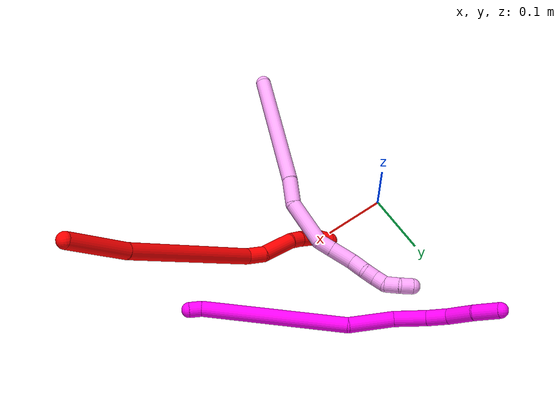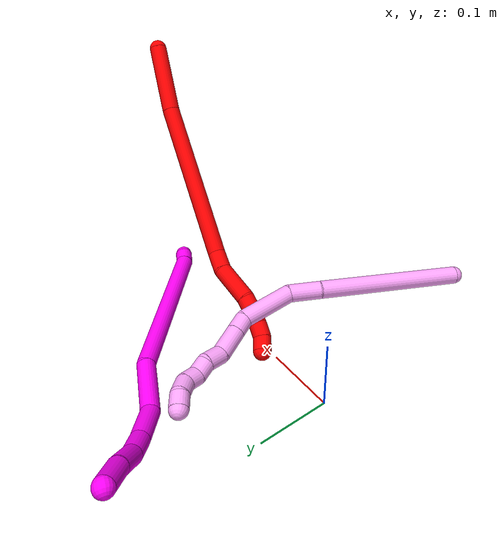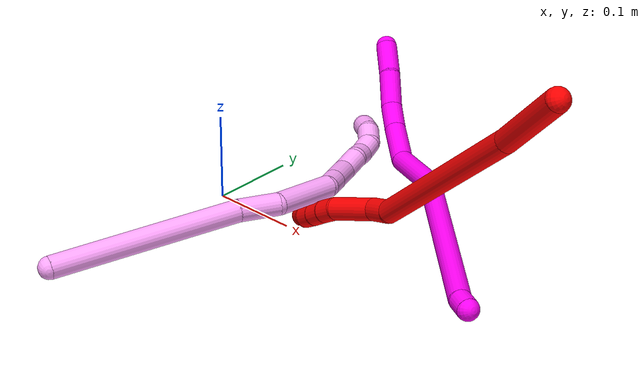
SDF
<sdf version="1.7">
 <world name="default">
  <model name="photoneo_s_sensor">
   <static>1</static>
   <pose>0 0 2 1.57079 1.57079 3.14159</pose>
   <link name="link">
    <inertial><mass>0.1</mass></inertial>
    <sensor name="sensor" type="depth">
     <update_rate>30</update_rate>
     <camera>
      <horizontal_fov>1.22</horizontal_fov>
      <image><width>1920</width><height>1200</height><format>B8G8R8</format></image>
      <clip><near>0.1</near><far>2</far></clip>
      <depth_camera><output>points</output></depth_camera>
     </camera>
     <plugin name="camera_plugin" filename="libgazebo_ros_depth_camera.so">
      <baseline>0.2</baseline>
      <alwaysOn>1</alwaysOn>
      <updateRate>0.0</updateRate>
      <cameraName>camera_ir</cameraName>
      <imageTopicName>/camera/color/image_raw</imageTopicName>
      <cameraInfoTopicName>/camera/color/camera_info</cameraInfoTopicName>
      <depthImageTopicName>/camera/depth/image_raw</depthImageTopicName>
      <depthImageCameraInfoTopicName>/camera/depth/camera_info</depthImageCameraInfoTopicName>
      <pointCloudTopicName>/camera/depth/points</pointCloudTopicName>
      <frameName>fr_optical</frameName>
      <pointCloudCutoff>0.1</pointCloudCutoff>
      <pointCloudCutoffMax>2.0</pointCloudCutoffMax>
      <distortionK1>0</distortionK1>
      <distortionK2>0</distortionK2>
      <distortionK3>0</distortionK3>
      <distortionT1>0</distortionT1>
      <distortionT2>0</distortionT2>
      <CxPrime>0</CxPrime>
      <Cx>0</Cx>
      <Cy>0</Cy>
      <focalLength>0</focalLength>
      <hackBaseline>0</hackBaseline>
     </plugin>
    </sensor>
   </link>
  </model>
  <model name="bin">
   <static>1</static>
   <link name="bottom">
    <collision name="collision-bottom">
     <pose>0 0 -0.01 0 -0 0</pose>
     <geometry><box><size>0.8 0.6 0.02</size></box></geometry>
     <surface>
      <friction><ode><mu>100</mu><mu2>100</mu2></ode></friction>
      <contact><collide_bitmask>65535</collide_bitmask></contact>
     </surface>
    </collision>
   </link>
   <link name="west_wall">
    <collision name="collision-west_wall">
     <pose>-0.41 0 0.1 0 -0 0</pose>
     <geometry><box><size>0.02 0.6 0.2</size></box></geometry>
     <surface>
      <friction><ode><mu>100</mu><mu2>100</mu2></ode></friction>
      <contact><collide_bitmask>65535</collide_bitmask></contact>
     </surface>
    </collision>
   </link>
   <link name="east_wall">
    <collision name="collision-east_wall">
     <pose>0.41 0 0.1 0 -0 0</pose>
     <geometry><box><size>0.02 0.6 0.2</size></box></geometry>
     <surface>
      <friction><ode><mu>100</mu><mu2>100</mu2></ode></friction>
      <contact><collide_bitmask>65535</collide_bitmask></contact>
     </surface>
    </collision>
   </link>
   <link name="south_wall">
    <collision name="collision-south_wall">
     <pose>0 -0.31 0.1 0 -0 0</pose>
     <geometry><box><size>0.8 0.02 0.2</size></box></geometry>
     <surface>
      <friction><ode><mu>100</mu><mu2>100</mu2></ode></friction>
      <contact><collide_bitmask>65535</collide_bitmask></contact>
     </surface>
    </collision>
   </link>
   <link name="north_wall">
    <collision name="collision-north_wall">
     <pose>0 0.31 0.1 0 -0 0</pose>
     <geometry><box><size>0.8 0.02 0.2</size></box></geometry>
     <surface>
      <friction><ode><mu>100</mu><mu2>100</mu2></ode></friction>
      <contact><collide_bitmask>65535</collide_bitmask></contact>
     </surface>
    </collision>
   </link>
  </model>
  <model name="2">
   <static>0</static>
   <link name="2">
    <collision name="collision-cylinder-e_1_1_4">
     <pose>0.00484 0.016506 -0.048528 -2.81374 0.094148 -0.554908</pose>
     <geometry><cylinder><radius>0.0125</radius><length>0.102973</length></cylinder></geometry>
     <surface>
      <friction><ode><mu>1.16</mu><mu2>1.16</mu2><slip1>0</slip1><slip2>0</slip2></ode></friction>
      <contact><ode><kp>1e+06</kp><kd>1</kd><max_vel>0</max_vel><min_depth>0.001</min_depth></ode></contact>
     </surface>
    </collision>
    <visual name="visual-cylinder-e_1_1_4">
     <pose>0.00484 0.016506 -0.048528 -2.81374 0.094148 -0.554908</pose>
     <geometry><cylinder><radius>0.0125</radius><length>0.102973</length></cylinder></geometry>
     <material><ambient>1 0 0 1</ambient></material>
    </visual>
    <collision name="collision-cylinder-e_2_4_5">
     <pose>0.022089 0.058724 -0.209315 -2.91643 0.107332 -0.88711</pose>
     <geometry><cylinder><radius>0.0125</radius><length>0.231663</length></cylinder></geometry>
     <surface>
      <friction><ode><mu>1.16</mu><mu2>1.16</mu2><slip1>0</slip1><slip2>0</slip2></ode></friction>
      <contact><ode><kp>1e+06</kp><kd>1</kd><max_vel>0</max_vel><min_depth>0.001</min_depth></ode></contact>
     </surface>
    </collision>
    <visual name="visual-cylinder-e_2_4_5">
     <pose>0.022089 0.058724 -0.209315 -2.91643 0.107332 -0.88711</pose>
     <geometry><cylinder><radius>0.0125</radius><length>0.231663</length></cylinder></geometry>
     <material><ambient>1 0 0 1</ambient></material>
    </visual>
    <collision name="collision-cylinder-e_3_5_6">
     <pose>0.031321 0.085061 -0.336051 -3.09846 -0.215802 2.74849</pose>
     <geometry><cylinder><radius>0.0125</radius><length>0.029672</length></cylinder></geometry>
     <surface>
      <friction><ode><mu>1.16</mu><mu2>1.16</mu2><slip1>0</slip1><slip2>0</slip2></ode></friction>
      <contact><ode><kp>1e+06</kp><kd>1</kd><max_vel>0</max_vel><min_depth>0.001</min_depth></ode></contact>
     </surface>
    </collision>
    <visual name="visual-cylinder-e_3_5_6">
     <pose>0.031321 0.085061 -0.336051 -3.09846 -0.215802 2.74849</pose>
     <geometry><cylinder><radius>0.0125</radius><length>0.029672</length></cylinder></geometry>
     <material><ambient>1 0 0 1</ambient></material>
    </visual>
    <collision name="collision-cylinder-e_4_6_7">
     <pose>0.027352 0.07984 -0.377453 2.92778 -0.028747 -0.266311</pose>
     <geometry><cylinder><radius>0.0125</radius><length>0.055124</length></cylinder></geometry>
     <surface>
      <friction><ode><mu>1.16</mu><mu2>1.16</mu2><slip1>0</slip1><slip2>0</slip2></ode></friction>
      <contact><ode><kp>1e+06</kp><kd>1</kd><max_vel>0</max_vel><min_depth>0.001</min_depth></ode></contact>
     </surface>
    </collision>
    <visual name="visual-cylinder-e_4_6_7">
     <pose>0.027352 0.07984 -0.377453 2.92778 -0.028747 -0.266311</pose>
     <geometry><cylinder><radius>0.0125</radius><length>0.055124</length></cylinder></geometry>
     <material><ambient>1 0 0 1</ambient></material>
    </visual>
    <collision name="collision-cylinder-e_5_7_8">
     <pose>0.026969 0.07419 -0.41463 -3.12242 0.039956 -2.24683</pose>
     <geometry><cylinder><radius>0.0125</radius><length>0.020528</length></cylinder></geometry>
     <surface>
      <friction><ode><mu>1.16</mu><mu2>1.16</mu2><slip1>0</slip1><slip2>0</slip2></ode></friction>
      <contact><ode><kp>1e+06</kp><kd>1</kd><max_vel>0</max_vel><min_depth>0.001</min_depth></ode></contact>
     </surface>
    </collision>
    <visual name="visual-cylinder-e_5_7_8">
     <pose>0.026969 0.07419 -0.41463 -3.12242 0.039956 -2.24683</pose>
     <geometry><cylinder><radius>0.0125</radius><length>0.020528</length></cylinder></geometry>
     <material><ambient>1 0 0 1</ambient></material>
    </visual>
    <collision name="collision-cylinder-e_6_8_9">
     <pose>0.02762 0.075387 -0.434832 -3.04141 0.024067 -0.471158</pose>
     <geometry><cylinder><radius>0.0125</radius><length>0.02</length></cylinder></geometry>
     <surface>
      <friction><ode><mu>1.16</mu><mu2>1.16</mu2><slip1>0</slip1><slip2>0</slip2></ode></friction>
      <contact><ode><kp>1e+06</kp><kd>1</kd><max_vel>0</max_vel><min_depth>0.001</min_depth></ode></contact>
     </surface>
    </collision>
    <visual name="visual-cylinder-e_6_8_9">
     <pose>0.02762 0.075387 -0.434832 -3.04141 0.024067 -0.471158</pose>
     <geometry><cylinder><radius>0.0125</radius><length>0.02</length></cylinder></geometry>
     <material><ambient>1 0 0 1</ambient></material>
    </visual>
    <collision name="collision-cylinder-e_7_9_10">
     <pose>0.027354 0.077839 -0.454666 -2.99579 -0.050694 0.668282</pose>
     <geometry><cylinder><radius>0.0125</radius><length>0.020013</length></cylinder></geometry>
     <surface>
      <friction><ode><mu>1.16</mu><mu2>1.16</mu2><slip1>0</slip1><slip2>0</slip2></ode></friction>
      <contact><ode><kp>1e+06</kp><kd>1</kd><max_vel>0</max_vel><min_depth>0.001</min_depth></ode></contact>
     </surface>
    </collision>
    <visual name="visual-cylinder-e_7_9_10">
     <pose>0.027354 0.077839 -0.454666 -2.99579 -0.050694 0.668282</pose>
     <geometry><cylinder><radius>0.0125</radius><length>0.020013</length></cylinder></geometry>
     <material><ambient>1 0 0 1</ambient></material>
    </visual>
    <collision name="collision-cylinder-e_8_10_2">
     <pose>0.023722 0.082771 -0.473407 -2.76697 -0.317376 1.40243</pose>
     <geometry><cylinder><radius>0.0125</radius><length>0.020026</length></cylinder></geometry>
     <surface>
      <friction><ode><mu>1.16</mu><mu2>1.16</mu2><slip1>0</slip1><slip2>0</slip2></ode></friction>
      <contact><ode><kp>1e+06</kp><kd>1</kd><max_vel>0</max_vel><min_depth>0.001</min_depth></ode></contact>
     </surface>
    </collision>
    <visual name="visual-cylinder-e_8_10_2">
     <pose>0.023722 0.082771 -0.473407 -2.76697 -0.317376 1.40243</pose>
     <geometry><cylinder><radius>0.0125</radius><length>0.020026</length></cylinder></geometry>
     <material><ambient>1 0 0 1</ambient></material>
    </visual>
    <collision name="collision-sphere-2">
     <pose>0.020597 0.086252 -0.48226 0 -0 0</pose>
     <geometry><sphere><radius>0.0125</radius></sphere></geometry>
     <surface>
      <friction><ode><mu>1.16</mu><mu2>1.16</mu2><slip1>0</slip1><slip2>0</slip2></ode></friction>
      <contact><ode><kp>1e+06</kp><kd>1</kd><max_vel>0</max_vel><min_depth>0.001</min_depth></ode></contact>
     </surface>
    </collision>
    <visual name="visual-sphere-2">
     <pose>0.020597 0.086252 -0.48226 0 -0 0</pose>
     <geometry><sphere><radius>0.0125</radius></sphere></geometry>
     <material><ambient>1 0 0 1</ambient></material>
    </visual>
    <collision name="collision-sphere-10">
     <pose>0.026846 0.079291 -0.464554 0 -0 0</pose>
     <geometry><sphere><radius>0.0125</radius></sphere></geometry>
     <surface>
      <friction><ode><mu>1.16</mu><mu2>1.16</mu2><slip1>0</slip1><slip2>0</slip2></ode></friction>
      <contact><ode><kp>1e+06</kp><kd>1</kd><max_vel>0</max_vel><min_depth>0.001</min_depth></ode></contact>
     </surface>
    </collision>
    <visual name="visual-sphere-10">
     <pose>0.026846 0.079291 -0.464554 0 -0 0</pose>
     <geometry><sphere><radius>0.0125</radius></sphere></geometry>
     <material><ambient>1 0 0 1</ambient></material>
    </visual>
    <collision name="collision-sphere-9">
     <pose>0.027861 0.076387 -0.444779 0 -0 0</pose>
     <geometry><sphere><radius>0.0125</radius></sphere></geometry>
     <surface>
      <friction><ode><mu>1.16</mu><mu2>1.16</mu2><slip1>0</slip1><slip2>0</slip2></ode></friction>
      <contact><ode><kp>1e+06</kp><kd>1</kd><max_vel>0</max_vel><min_depth>0.001</min_depth></ode></contact>
     </surface>
    </collision>
    <visual name="visual-sphere-9">
     <pose>0.027861 0.076387 -0.444779 0 -0 0</pose>
     <geometry><sphere><radius>0.0125</radius></sphere></geometry>
     <material><ambient>1 0 0 1</ambient></material>
    </visual>
    <collision name="collision-sphere-4">
     <pose>0.00968 0.033012 -0.097057 0 -0 0</pose>
     <geometry><sphere><radius>0.0125</radius></sphere></geometry>
     <surface>
      <friction><ode><mu>1.16</mu><mu2>1.16</mu2><slip1>0</slip1><slip2>0</slip2></ode></friction>
      <contact><ode><kp>1e+06</kp><kd>1</kd><max_vel>0</max_vel><min_depth>0.001</min_depth></ode></contact>
     </surface>
    </collision>
    <visual name="visual-sphere-4">
     <pose>0.00968 0.033012 -0.097057 0 -0 0</pose>
     <geometry><sphere><radius>0.0125</radius></sphere></geometry>
     <material><ambient>1 0 0 1</ambient></material>
    </visual>
    <collision name="collision-sphere-1">
     <geometry><sphere><radius>0.0125</radius></sphere></geometry>
     <surface>
      <friction><ode><mu>1.16</mu><mu2>1.16</mu2><slip1>0</slip1><slip2>0</slip2></ode></friction>
      <contact><ode><kp>1e+06</kp><kd>1</kd><max_vel>0</max_vel><min_depth>0.001</min_depth></ode></contact>
     </surface>
    </collision>
    <visual name="visual-sphere-1">
     <geometry><sphere><radius>0.0125</radius></sphere></geometry>
     <material><ambient>1 0 0 1</ambient></material>
    </visual>
    <collision name="collision-sphere-8">
     <pose>0.027379 0.074387 -0.424884 0 -0 0</pose>
     <geometry><sphere><radius>0.0125</radius></sphere></geometry>
     <surface>
      <friction><ode><mu>1.16</mu><mu2>1.16</mu2><slip1>0</slip1><slip2>0</slip2></ode></friction>
      <contact><ode><kp>1e+06</kp><kd>1</kd><max_vel>0</max_vel><min_depth>0.001</min_depth></ode></contact>
     </surface>
    </collision>
    <visual name="visual-sphere-8">
     <pose>0.027379 0.074387 -0.424884 0 -0 0</pose>
     <geometry><sphere><radius>0.0125</radius></sphere></geometry>
     <material><ambient>1 0 0 1</ambient></material>
    </visual>
    <collision name="collision-sphere-5">
     <pose>0.034498 0.084436 -0.321573 0 -0 0</pose>
     <geometry><sphere><radius>0.0125</radius></sphere></geometry>
     <surface>
      <friction><ode><mu>1.16</mu><mu2>1.16</mu2><slip1>0</slip1><slip2>0</slip2></ode></friction>
      <contact><ode><kp>1e+06</kp><kd>1</kd><max_vel>0</max_vel><min_depth>0.001</min_depth></ode></contact>
     </surface>
    </collision>
    <visual name="visual-sphere-5">
     <pose>0.034498 0.084436 -0.321573 0 -0 0</pose>
     <geometry><sphere><radius>0.0125</radius></sphere></geometry>
     <material><ambient>1 0 0 1</ambient></material>
    </visual>
    <collision name="collision-sphere-6">
     <pose>0.028144 0.085685 -0.35053 0 -0 0</pose>
     <geometry><sphere><radius>0.0125</radius></sphere></geometry>
     <surface>
      <friction><ode><mu>1.16</mu><mu2>1.16</mu2><slip1>0</slip1><slip2>0</slip2></ode></friction>
      <contact><ode><kp>1e+06</kp><kd>1</kd><max_vel>0</max_vel><min_depth>0.001</min_depth></ode></contact>
     </surface>
    </collision>
    <visual name="visual-sphere-6">
     <pose>0.028144 0.085685 -0.35053 0 -0 0</pose>
     <geometry><sphere><radius>0.0125</radius></sphere></geometry>
     <material><ambient>1 0 0 1</ambient></material>
    </visual>
    <collision name="collision-sphere-7">
     <pose>0.026559 0.073994 -0.404376 0 -0 0</pose>
     <geometry><sphere><radius>0.0125</radius></sphere></geometry>
     <surface>
      <friction><ode><mu>1.16</mu><mu2>1.16</mu2><slip1>0</slip1><slip2>0</slip2></ode></friction>
      <contact><ode><kp>1e+06</kp><kd>1</kd><max_vel>0</max_vel><min_depth>0.001</min_depth></ode></contact>
     </surface>
    </collision>
    <visual name="visual-sphere-7">
     <pose>0.026559 0.073994 -0.404376 0 -0 0</pose>
     <geometry><sphere><radius>0.0125</radius></sphere></geometry>
     <material><ambient>1 0 0 1</ambient></material>
    </visual>
    <inertial>
     <pose>0.020362 0.05695 -0.240108 0 -0 0</pose>
     <mass>0.5</mass>
     <inertia>
      <ixx>-0.000105</ixx>
      <ixy>0</ixy>
      <ixz>0</ixz>
      <iyy>-0.001564</iyy>
      <iyz>0</iyz>
      <izz>-0.000417</izz>
     </inertia>
    </inertial>
   </link>
   <pose>0.491608 -0.068948 0.309786 -0.889886 0.692918 -1.18472</pose>
  </model>
  <model name="4">
   <static>0</static>
   <link name="4">
    <collision name="collision-cylinder-e_1_1_4">
     <pose>0.001493 0.099975 -0.030166 -1.86385 0.014295 -0.019244</pose>
     <geometry><cylinder><radius>0.0125</radius><length>0.208875</length></cylinder></geometry>
     <surface>
      <friction><ode><mu>1.16</mu><mu2>1.16</mu2><slip1>0</slip1><slip2>0</slip2></ode></friction>
      <contact><ode><kp>1e+06</kp><kd>1</kd><max_vel>0</max_vel><min_depth>0.001</min_depth></ode></contact>
     </surface>
    </collision>
    <visual name="visual-cylinder-e_1_1_4">
     <pose>0.001493 0.099975 -0.030166 -1.86385 0.014295 -0.019244</pose>
     <geometry><cylinder><radius>0.0125</radius><length>0.208875</length></cylinder></geometry>
     <material><ambient>1 0.65098 0.996078 1</ambient></material>
    </visual>
    <collision name="collision-cylinder-e_2_4_5">
     <pose>0.005524 0.221767 -0.06496 -1.77982 0.113347 -0.139834</pose>
     <geometry><cylinder><radius>0.0125</radius><length>0.044892</length></cylinder></geometry>
     <surface>
      <friction><ode><mu>1.16</mu><mu2>1.16</mu2><slip1>0</slip1><slip2>0</slip2></ode></friction>
      <contact><ode><kp>1e+06</kp><kd>1</kd><max_vel>0</max_vel><min_depth>0.001</min_depth></ode></contact>
     </surface>
    </collision>
    <visual name="visual-cylinder-e_2_4_5">
     <pose>0.005524 0.221767 -0.06496 -1.77982 0.113347 -0.139834</pose>
     <geometry><cylinder><radius>0.0125</radius><length>0.044892</length></cylinder></geometry>
     <material><ambient>1 0.65098 0.996078 1</ambient></material>
    </visual>
    <collision name="collision-cylinder-e_3_5_6">
     <pose>0.0137 0.272589 -0.092636 -2.24223 0.150991 -0.310897</pose>
     <geometry><cylinder><radius>0.0125</radius><length>0.074947</length></cylinder></geometry>
     <surface>
      <friction><ode><mu>1.16</mu><mu2>1.16</mu2><slip1>0</slip1><slip2>0</slip2></ode></friction>
      <contact><ode><kp>1e+06</kp><kd>1</kd><max_vel>0</max_vel><min_depth>0.001</min_depth></ode></contact>
     </surface>
    </collision>
    <visual name="visual-cylinder-e_3_5_6">
     <pose>0.0137 0.272589 -0.092636 -2.24223 0.150991 -0.310897</pose>
     <geometry><cylinder><radius>0.0125</radius><length>0.074947</length></cylinder></geometry>
     <material><ambient>1 0.65098 0.996078 1</ambient></material>
    </visual>
    <collision name="collision-cylinder-e_4_6_7">
     <pose>0.021155 0.30626 -0.125963 -2.71555 0.159719 -0.70874</pose>
     <geometry><cylinder><radius>0.0125</radius><length>0.02287</length></cylinder></geometry>
     <surface>
      <friction><ode><mu>1.16</mu><mu2>1.16</mu2><slip1>0</slip1><slip2>0</slip2></ode></friction>
      <contact><ode><kp>1e+06</kp><kd>1</kd><max_vel>0</max_vel><min_depth>0.001</min_depth></ode></contact>
     </surface>
    </collision>
    <visual name="visual-cylinder-e_4_6_7">
     <pose>0.021155 0.30626 -0.125963 -2.71555 0.159719 -0.70874</pose>
     <geometry><cylinder><radius>0.0125</radius><length>0.02287</length></cylinder></geometry>
     <material><ambient>1 0.65098 0.996078 1</ambient></material>
    </visual>
    <collision name="collision-cylinder-e_5_7_8">
     <pose>0.025979 0.318769 -0.153702 -2.71936 0.155729 -0.698303</pose>
     <geometry><cylinder><radius>0.0125</radius><length>0.038748</length></cylinder></geometry>
     <surface>
      <friction><ode><mu>1.16</mu><mu2>1.16</mu2><slip1>0</slip1><slip2>0</slip2></ode></friction>
      <contact><ode><kp>1e+06</kp><kd>1</kd><max_vel>0</max_vel><min_depth>0.001</min_depth></ode></contact>
     </surface>
    </collision>
    <visual name="visual-cylinder-e_5_7_8">
     <pose>0.025979 0.318769 -0.153702 -2.71936 0.155729 -0.698303</pose>
     <geometry><cylinder><radius>0.0125</radius><length>0.038748</length></cylinder></geometry>
     <material><ambient>1 0.65098 0.996078 1</ambient></material>
    </visual>
    <collision name="collision-cylinder-e_6_8_9">
     <pose>0.026791 0.33522 -0.180863 -2.41588 -0.167437 0.435047</pose>
     <geometry><cylinder><radius>0.0125</radius><length>0.026309</length></cylinder></geometry>
     <surface>
      <friction><ode><mu>1.16</mu><mu2>1.16</mu2><slip1>0</slip1><slip2>0</slip2></ode></friction>
      <contact><ode><kp>1e+06</kp><kd>1</kd><max_vel>0</max_vel><min_depth>0.001</min_depth></ode></contact>
     </surface>
    </collision>
    <visual name="visual-cylinder-e_6_8_9">
     <pose>0.026791 0.33522 -0.180863 -2.41588 -0.167437 0.435047</pose>
     <geometry><cylinder><radius>0.0125</radius><length>0.026309</length></cylinder></geometry>
     <material><ambient>1 0.65098 0.996078 1</ambient></material>
    </visual>
    <collision name="collision-cylinder-e_7_9_10">
     <pose>0.026542 0.348223 -0.199475 -2.68333 0.193094 -0.787165</pose>
     <geometry><cylinder><radius>0.0125</radius><length>0.020247</length></cylinder></geometry>
     <surface>
      <friction><ode><mu>1.16</mu><mu2>1.16</mu2><slip1>0</slip1><slip2>0</slip2></ode></friction>
      <contact><ode><kp>1e+06</kp><kd>1</kd><max_vel>0</max_vel><min_depth>0.001</min_depth></ode></contact>
     </surface>
    </collision>
    <visual name="visual-cylinder-e_7_9_10">
     <pose>0.026542 0.348223 -0.199475 -2.68333 0.193094 -0.787165</pose>
     <geometry><cylinder><radius>0.0125</radius><length>0.020247</length></cylinder></geometry>
     <material><ambient>1 0.65098 0.996078 1</ambient></material>
    </visual>
    <collision name="collision-cylinder-e_8_10_11">
     <pose>0.02641 0.358787 -0.216149 -2.47022 -0.206222 0.576649</pose>
     <geometry><cylinder><radius>0.0125</radius><length>0.02026</length></cylinder></geometry>
     <surface>
      <friction><ode><mu>1.16</mu><mu2>1.16</mu2><slip1>0</slip1><slip2>0</slip2></ode></friction>
      <contact><ode><kp>1e+06</kp><kd>1</kd><max_vel>0</max_vel><min_depth>0.001</min_depth></ode></contact>
     </surface>
    </collision>
    <visual name="visual-cylinder-e_8_10_11">
     <pose>0.02641 0.358787 -0.216149 -2.47022 -0.206222 0.576649</pose>
     <geometry><cylinder><radius>0.0125</radius><length>0.02026</length></cylinder></geometry>
     <material><ambient>1 0.65098 0.996078 1</ambient></material>
    </visual>
    <collision name="collision-cylinder-e_9_11_12">
     <pose>0.021405 0.366564 -0.234828 -2.99521 -0.259617 2.11805</pose>
     <geometry><cylinder><radius>0.0125</radius><length>0.022833</length></cylinder></geometry>
     <surface>
      <friction><ode><mu>1.16</mu><mu2>1.16</mu2><slip1>0</slip1><slip2>0</slip2></ode></friction>
      <contact><ode><kp>1e+06</kp><kd>1</kd><max_vel>0</max_vel><min_depth>0.001</min_depth></ode></contact>
     </surface>
    </collision>
    <visual name="visual-cylinder-e_9_11_12">
     <pose>0.021405 0.366564 -0.234828 -2.99521 -0.259617 2.11805</pose>
     <geometry><cylinder><radius>0.0125</radius><length>0.022833</length></cylinder></geometry>
     <material><ambient>1 0.65098 0.996078 1</ambient></material>
    </visual>
    <collision name="collision-cylinder-e_10_12_2">
     <pose>0.018837 0.367336 -0.255712 3.05778 0.036167 0.814435</pose>
     <geometry><cylinder><radius>0.0125</radius><length>0.020019</length></cylinder></geometry>
     <surface>
      <friction><ode><mu>1.16</mu><mu2>1.16</mu2><slip1>0</slip1><slip2>0</slip2></ode></friction>
      <contact><ode><kp>1e+06</kp><kd>1</kd><max_vel>0</max_vel><min_depth>0.001</min_depth></ode></contact>
     </surface>
    </collision>
    <visual name="visual-cylinder-e_10_12_2">
     <pose>0.018837 0.367336 -0.255712 3.05778 0.036167 0.814435</pose>
     <geometry><cylinder><radius>0.0125</radius><length>0.020019</length></cylinder></geometry>
     <material><ambient>1 0.65098 0.996078 1</ambient></material>
    </visual>
    <collision name="collision-sphere-2">
     <pose>0.019199 0.366499 -0.26568 0 -0 0</pose>
     <geometry><sphere><radius>0.0125</radius></sphere></geometry>
     <surface>
      <friction><ode><mu>1.16</mu><mu2>1.16</mu2><slip1>0</slip1><slip2>0</slip2></ode></friction>
      <contact><ode><kp>1e+06</kp><kd>1</kd><max_vel>0</max_vel><min_depth>0.001</min_depth></ode></contact>
     </surface>
    </collision>
    <visual name="visual-sphere-2">
     <pose>0.019199 0.366499 -0.26568 0 -0 0</pose>
     <geometry><sphere><radius>0.0125</radius></sphere></geometry>
     <material><ambient>1 0.65098 0.996078 1</ambient></material>
    </visual>
    <collision name="collision-sphere-12">
     <pose>0.018475 0.368173 -0.245744 0 -0 0</pose>
     <geometry><sphere><radius>0.0125</radius></sphere></geometry>
     <surface>
      <friction><ode><mu>1.16</mu><mu2>1.16</mu2><slip1>0</slip1><slip2>0</slip2></ode></friction>
      <contact><ode><kp>1e+06</kp><kd>1</kd><max_vel>0</max_vel><min_depth>0.001</min_depth></ode></contact>
     </surface>
    </collision>
    <visual name="visual-sphere-12">
     <pose>0.018475 0.368173 -0.245744 0 -0 0</pose>
     <geometry><sphere><radius>0.0125</radius></sphere></geometry>
     <material><ambient>1 0.65098 0.996078 1</ambient></material>
    </visual>
    <collision name="collision-sphere-11">
     <pose>0.024336 0.364954 -0.223912 0 -0 0</pose>
     <geometry><sphere><radius>0.0125</radius></sphere></geometry>
     <surface>
      <friction><ode><mu>1.16</mu><mu2>1.16</mu2><slip1>0</slip1><slip2>0</slip2></ode></friction>
      <contact><ode><kp>1e+06</kp><kd>1</kd><max_vel>0</max_vel><min_depth>0.001</min_depth></ode></contact>
     </surface>
    </collision>
    <visual name="visual-sphere-11">
     <pose>0.024336 0.364954 -0.223912 0 -0 0</pose>
     <geometry><sphere><radius>0.0125</radius></sphere></geometry>
     <material><ambient>1 0.65098 0.996078 1</ambient></material>
    </visual>
    <collision name="collision-sphere-10">
     <pose>0.028485 0.352619 -0.208386 0 -0 0</pose>
     <geometry><sphere><radius>0.0125</radius></sphere></geometry>
     <surface>
      <friction><ode><mu>1.16</mu><mu2>1.16</mu2><slip1>0</slip1><slip2>0</slip2></ode></friction>
      <contact><ode><kp>1e+06</kp><kd>1</kd><max_vel>0</max_vel><min_depth>0.001</min_depth></ode></contact>
     </surface>
    </collision>
    <visual name="visual-sphere-10">
     <pose>0.028485 0.352619 -0.208386 0 -0 0</pose>
     <geometry><sphere><radius>0.0125</radius></sphere></geometry>
     <material><ambient>1 0.65098 0.996078 1</ambient></material>
    </visual>
    <collision name="collision-sphere-9">
     <pose>0.024599 0.343828 -0.190565 0 -0 0</pose>
     <geometry><sphere><radius>0.0125</radius></sphere></geometry>
     <surface>
      <friction><ode><mu>1.16</mu><mu2>1.16</mu2><slip1>0</slip1><slip2>0</slip2></ode></friction>
      <contact><ode><kp>1e+06</kp><kd>1</kd><max_vel>0</max_vel><min_depth>0.001</min_depth></ode></contact>
     </surface>
    </collision>
    <visual name="visual-sphere-9">
     <pose>0.024599 0.343828 -0.190565 0 -0 0</pose>
     <geometry><sphere><radius>0.0125</radius></sphere></geometry>
     <material><ambient>1 0.65098 0.996078 1</ambient></material>
    </visual>
    <collision name="collision-sphere-4">
     <pose>0.002986 0.19995 -0.060332 0 -0 0</pose>
     <geometry><sphere><radius>0.0125</radius></sphere></geometry>
     <surface>
      <friction><ode><mu>1.16</mu><mu2>1.16</mu2><slip1>0</slip1><slip2>0</slip2></ode></friction>
      <contact><ode><kp>1e+06</kp><kd>1</kd><max_vel>0</max_vel><min_depth>0.001</min_depth></ode></contact>
     </surface>
    </collision>
    <visual name="visual-sphere-4">
     <pose>0.002986 0.19995 -0.060332 0 -0 0</pose>
     <geometry><sphere><radius>0.0125</radius></sphere></geometry>
     <material><ambient>1 0.65098 0.996078 1</ambient></material>
    </visual>
    <collision name="collision-sphere-1">
     <geometry><sphere><radius>0.0125</radius></sphere></geometry>
     <surface>
      <friction><ode><mu>1.16</mu><mu2>1.16</mu2><slip1>0</slip1><slip2>0</slip2></ode></friction>
      <contact><ode><kp>1e+06</kp><kd>1</kd><max_vel>0</max_vel><min_depth>0.001</min_depth></ode></contact>
     </surface>
    </collision>
    <visual name="visual-sphere-1">
     <geometry><sphere><radius>0.0125</radius></sphere></geometry>
     <material><ambient>1 0.65098 0.996078 1</ambient></material>
    </visual>
    <collision name="collision-sphere-8">
     <pose>0.028984 0.326612 -0.171161 0 -0 0</pose>
     <geometry><sphere><radius>0.0125</radius></sphere></geometry>
     <surface>
      <friction><ode><mu>1.16</mu><mu2>1.16</mu2><slip1>0</slip1><slip2>0</slip2></ode></friction>
      <contact><ode><kp>1e+06</kp><kd>1</kd><max_vel>0</max_vel><min_depth>0.001</min_depth></ode></contact>
     </surface>
    </collision>
    <visual name="visual-sphere-8">
     <pose>0.028984 0.326612 -0.171161 0 -0 0</pose>
     <geometry><sphere><radius>0.0125</radius></sphere></geometry>
     <material><ambient>1 0.65098 0.996078 1</ambient></material>
    </visual>
    <collision name="collision-sphere-5">
     <pose>0.008063 0.243584 -0.069588 0 -0 0</pose>
     <geometry><sphere><radius>0.0125</radius></sphere></geometry>
     <surface>
      <friction><ode><mu>1.16</mu><mu2>1.16</mu2><slip1>0</slip1><slip2>0</slip2></ode></friction>
      <contact><ode><kp>1e+06</kp><kd>1</kd><max_vel>0</max_vel><min_depth>0.001</min_depth></ode></contact>
     </surface>
    </collision>
    <visual name="visual-sphere-5">
     <pose>0.008063 0.243584 -0.069588 0 -0 0</pose>
     <geometry><sphere><radius>0.0125</radius></sphere></geometry>
     <material><ambient>1 0.65098 0.996078 1</ambient></material>
    </visual>
    <collision name="collision-sphere-6">
     <pose>0.019337 0.301594 -0.115683 0 -0 0</pose>
     <geometry><sphere><radius>0.0125</radius></sphere></geometry>
     <surface>
      <friction><ode><mu>1.16</mu><mu2>1.16</mu2><slip1>0</slip1><slip2>0</slip2></ode></friction>
      <contact><ode><kp>1e+06</kp><kd>1</kd><max_vel>0</max_vel><min_depth>0.001</min_depth></ode></contact>
     </surface>
    </collision>
    <visual name="visual-sphere-6">
     <pose>0.019337 0.301594 -0.115683 0 -0 0</pose>
     <geometry><sphere><radius>0.0125</radius></sphere></geometry>
     <material><ambient>1 0.65098 0.996078 1</ambient></material>
    </visual>
    <collision name="collision-sphere-7">
     <pose>0.022974 0.310926 -0.136244 0 -0 0</pose>
     <geometry><sphere><radius>0.0125</radius></sphere></geometry>
     <surface>
      <friction><ode><mu>1.16</mu><mu2>1.16</mu2><slip1>0</slip1><slip2>0</slip2></ode></friction>
      <contact><ode><kp>1e+06</kp><kd>1</kd><max_vel>0</max_vel><min_depth>0.001</min_depth></ode></contact>
     </surface>
    </collision>
    <visual name="visual-sphere-7">
     <pose>0.022974 0.310926 -0.136244 0 -0 0</pose>
     <geometry><sphere><radius>0.0125</radius></sphere></geometry>
     <material><ambient>1 0.65098 0.996078 1</ambient></material>
    </visual>
    <inertial>
     <pose>0.01144 0.218971 -0.097307 0 -0 0</pose>
     <mass>0.5</mass>
     <inertia>
      <ixx>0.000795</ixx>
      <ixy>0</ixy>
      <ixz>0</ixz>
      <iyy>-0.000254</iyy>
      <iyz>0</iyz>
      <izz>-0.000819</izz>
     </inertia>
    </inertial>
   </link>
   <pose>0.037466 -0.283077 0.046355 0.951464 1.41456 0.265299</pose>
  </model>
  <model name="10">
   <static>0</static>
   <link name="10">
    <collision name="collision-cylinder-e_1_1_4">
     <pose>-0.002566 0.003015 0.009209 -0.316368 -0.258899 0.041525</pose>
     <geometry><cylinder><radius>0.0125</radius><length>0.020049</length></cylinder></geometry>
     <surface>
      <friction><ode><mu>1.16</mu><mu2>1.16</mu2><slip1>0</slip1><slip2>0</slip2></ode></friction>
      <contact><ode><kp>1e+06</kp><kd>1</kd><max_vel>0</max_vel><min_depth>0.001</min_depth></ode></contact>
     </surface>
    </collision>
    <visual name="visual-cylinder-e_1_1_4">
     <pose>-0.002566 0.003015 0.009209 -0.316368 -0.258899 0.041525</pose>
     <geometry><cylinder><radius>0.0125</radius><length>0.020049</length></cylinder></geometry>
     <material><ambient>1 0 0.964706 1</ambient></material>
    </visual>
    <collision name="collision-cylinder-e_2_4_5">
     <pose>-0.062781 0.039738 0.113228 -0.341598 -0.520266 0.091751</pose>
     <geometry><cylinder><radius>0.0125</radius><length>0.231934</length></cylinder></geometry>
     <surface>
      <friction><ode><mu>1.16</mu><mu2>1.16</mu2><slip1>0</slip1><slip2>0</slip2></ode></friction>
      <contact><ode><kp>1e+06</kp><kd>1</kd><max_vel>0</max_vel><min_depth>0.001</min_depth></ode></contact>
     </surface>
    </collision>
    <visual name="visual-cylinder-e_2_4_5">
     <pose>-0.062781 0.039738 0.113228 -0.341598 -0.520266 0.091751</pose>
     <geometry><cylinder><radius>0.0125</radius><length>0.231934</length></cylinder></geometry>
     <material><ambient>1 0 0.964706 1</ambient></material>
    </visual>
    <collision name="collision-cylinder-e_3_5_6">
     <pose>-0.127148 0.083068 0.243114 -0.267742 -0.182647 0.024666</pose>
     <geometry><cylinder><radius>0.0125</radius><length>0.073977</length></cylinder></geometry>
     <surface>
      <friction><ode><mu>1.16</mu><mu2>1.16</mu2><slip1>0</slip1><slip2>0</slip2></ode></friction>
      <contact><ode><kp>1e+06</kp><kd>1</kd><max_vel>0</max_vel><min_depth>0.001</min_depth></ode></contact>
     </surface>
    </collision>
    <visual name="visual-cylinder-e_3_5_6">
     <pose>-0.127148 0.083068 0.243114 -0.267742 -0.182647 0.024666</pose>
     <geometry><cylinder><radius>0.0125</radius><length>0.073977</length></cylinder></geometry>
     <material><ambient>1 0 0.964706 1</ambient></material>
    </visual>
    <collision name="collision-cylinder-e_4_6_7">
     <pose>-0.146545 0.106219 0.297289 -0.61633 -0.496461 0.161005</pose>
     <geometry><cylinder><radius>0.0125</radius><length>0.053235</length></cylinder></geometry>
     <surface>
      <friction><ode><mu>1.16</mu><mu2>1.16</mu2><slip1>0</slip1><slip2>0</slip2></ode></friction>
      <contact><ode><kp>1e+06</kp><kd>1</kd><max_vel>0</max_vel><min_depth>0.001</min_depth></ode></contact>
     </surface>
    </collision>
    <visual name="visual-cylinder-e_4_6_7">
     <pose>-0.146545 0.106219 0.297289 -0.61633 -0.496461 0.161005</pose>
     <geometry><cylinder><radius>0.0125</radius><length>0.053235</length></cylinder></geometry>
     <material><ambient>1 0 0.964706 1</ambient></material>
    </visual>
    <collision name="collision-cylinder-e_5_7_8">
     <pose>-0.167547 0.130366 0.326865 -0.792053 -0.508966 0.216672</pose>
     <geometry><cylinder><radius>0.0125</radius><length>0.034165</length></cylinder></geometry>
     <surface>
      <friction><ode><mu>1.16</mu><mu2>1.16</mu2><slip1>0</slip1><slip2>0</slip2></ode></friction>
      <contact><ode><kp>1e+06</kp><kd>1</kd><max_vel>0</max_vel><min_depth>0.001</min_depth></ode></contact>
     </surface>
    </collision>
    <visual name="visual-cylinder-e_5_7_8">
     <pose>-0.167547 0.130366 0.326865 -0.792053 -0.508966 0.216672</pose>
     <geometry><cylinder><radius>0.0125</radius><length>0.034165</length></cylinder></geometry>
     <material><ambient>1 0 0.964706 1</ambient></material>
    </visual>
    <collision name="collision-cylinder-e_6_8_9">
     <pose>-0.187215 0.15788 0.346358 -1.08064 -0.534775 0.32575</pose>
     <geometry><cylinder><radius>0.0125</radius><length>0.044517</length></cylinder></geometry>
     <surface>
      <friction><ode><mu>1.16</mu><mu2>1.16</mu2><slip1>0</slip1><slip2>0</slip2></ode></friction>
      <contact><ode><kp>1e+06</kp><kd>1</kd><max_vel>0</max_vel><min_depth>0.001</min_depth></ode></contact>
     </surface>
    </collision>
    <visual name="visual-cylinder-e_6_8_9">
     <pose>-0.187215 0.15788 0.346358 -1.08064 -0.534775 0.32575</pose>
     <geometry><cylinder><radius>0.0125</radius><length>0.044517</length></cylinder></geometry>
     <material><ambient>1 0 0.964706 1</ambient></material>
    </visual>
    <collision name="collision-cylinder-e_7_9_2">
     <pose>-0.209226 0.188909 0.366778 -0.891825 -0.531095 0.258566</pose>
     <geometry><cylinder><radius>0.0125</radius><length>0.042123</length></cylinder></geometry>
     <surface>
      <friction><ode><mu>1.16</mu><mu2>1.16</mu2><slip1>0</slip1><slip2>0</slip2></ode></friction>
      <contact><ode><kp>1e+06</kp><kd>1</kd><max_vel>0</max_vel><min_depth>0.001</min_depth></ode></contact>
     </surface>
    </collision>
    <visual name="visual-cylinder-e_7_9_2">
     <pose>-0.209226 0.188909 0.366778 -0.891825 -0.531095 0.258566</pose>
     <geometry><cylinder><radius>0.0125</radius><length>0.042123</length></cylinder></geometry>
     <material><ambient>1 0 0.964706 1</ambient></material>
    </visual>
    <collision name="collision-sphere-2">
     <pose>-0.219894 0.203042 0.378183 0 -0 0</pose>
     <geometry><sphere><radius>0.0125</radius></sphere></geometry>
     <surface>
      <friction><ode><mu>1.16</mu><mu2>1.16</mu2><slip1>0</slip1><slip2>0</slip2></ode></friction>
      <contact><ode><kp>1e+06</kp><kd>1</kd><max_vel>0</max_vel><min_depth>0.001</min_depth></ode></contact>
     </surface>
    </collision>
    <visual name="visual-sphere-2">
     <pose>-0.219894 0.203042 0.378183 0 -0 0</pose>
     <geometry><sphere><radius>0.0125</radius></sphere></geometry>
     <material><ambient>1 0 0.964706 1</ambient></material>
    </visual>
    <collision name="collision-sphere-9">
     <pose>-0.198559 0.174776 0.355374 0 -0 0</pose>
     <geometry><sphere><radius>0.0125</radius></sphere></geometry>
     <surface>
      <friction><ode><mu>1.16</mu><mu2>1.16</mu2><slip1>0</slip1><slip2>0</slip2></ode></friction>
      <contact><ode><kp>1e+06</kp><kd>1</kd><max_vel>0</max_vel><min_depth>0.001</min_depth></ode></contact>
     </surface>
    </collision>
    <visual name="visual-sphere-9">
     <pose>-0.198559 0.174776 0.355374 0 -0 0</pose>
     <geometry><sphere><radius>0.0125</radius></sphere></geometry>
     <material><ambient>1 0 0.964706 1</ambient></material>
    </visual>
    <collision name="collision-sphere-4">
     <pose>-0.005133 0.00603 0.018419 0 -0 0</pose>
     <geometry><sphere><radius>0.0125</radius></sphere></geometry>
     <surface>
      <friction><ode><mu>1.16</mu><mu2>1.16</mu2><slip1>0</slip1><slip2>0</slip2></ode></friction>
      <contact><ode><kp>1e+06</kp><kd>1</kd><max_vel>0</max_vel><min_depth>0.001</min_depth></ode></contact>
     </surface>
    </collision>
    <visual name="visual-sphere-4">
     <pose>-0.005133 0.00603 0.018419 0 -0 0</pose>
     <geometry><sphere><radius>0.0125</radius></sphere></geometry>
     <material><ambient>1 0 0.964706 1</ambient></material>
    </visual>
    <collision name="collision-sphere-1">
     <geometry><sphere><radius>0.0125</radius></sphere></geometry>
     <surface>
      <friction><ode><mu>1.16</mu><mu2>1.16</mu2><slip1>0</slip1><slip2>0</slip2></ode></friction>
      <contact><ode><kp>1e+06</kp><kd>1</kd><max_vel>0</max_vel><min_depth>0.001</min_depth></ode></contact>
     </surface>
    </collision>
    <visual name="visual-sphere-1">
     <geometry><sphere><radius>0.0125</radius></sphere></geometry>
     <material><ambient>1 0 0.964706 1</ambient></material>
    </visual>
    <collision name="collision-sphere-8">
     <pose>-0.175871 0.140984 0.337342 0 -0 0</pose>
     <geometry><sphere><radius>0.0125</radius></sphere></geometry>
     <surface>
      <friction><ode><mu>1.16</mu><mu2>1.16</mu2><slip1>0</slip1><slip2>0</slip2></ode></friction>
      <contact><ode><kp>1e+06</kp><kd>1</kd><max_vel>0</max_vel><min_depth>0.001</min_depth></ode></contact>
     </surface>
    </collision>
    <visual name="visual-sphere-8">
     <pose>-0.175871 0.140984 0.337342 0 -0 0</pose>
     <geometry><sphere><radius>0.0125</radius></sphere></geometry>
     <material><ambient>1 0 0.964706 1</ambient></material>
    </visual>
    <collision name="collision-sphere-5">
     <pose>-0.12043 0.073446 0.208037 0 -0 0</pose>
     <geometry><sphere><radius>0.0125</radius></sphere></geometry>
     <surface>
      <friction><ode><mu>1.16</mu><mu2>1.16</mu2><slip1>0</slip1><slip2>0</slip2></ode></friction>
      <contact><ode><kp>1e+06</kp><kd>1</kd><max_vel>0</max_vel><min_depth>0.001</min_depth></ode></contact>
     </surface>
    </collision>
    <visual name="visual-sphere-5">
     <pose>-0.12043 0.073446 0.208037 0 -0 0</pose>
     <geometry><sphere><radius>0.0125</radius></sphere></geometry>
     <material><ambient>1 0 0.964706 1</ambient></material>
    </visual>
    <collision name="collision-sphere-6">
     <pose>-0.133867 0.092691 0.278192 0 -0 0</pose>
     <geometry><sphere><radius>0.0125</radius></sphere></geometry>
     <surface>
      <friction><ode><mu>1.16</mu><mu2>1.16</mu2><slip1>0</slip1><slip2>0</slip2></ode></friction>
      <contact><ode><kp>1e+06</kp><kd>1</kd><max_vel>0</max_vel><min_depth>0.001</min_depth></ode></contact>
     </surface>
    </collision>
    <visual name="visual-sphere-6">
     <pose>-0.133867 0.092691 0.278192 0 -0 0</pose>
     <geometry><sphere><radius>0.0125</radius></sphere></geometry>
     <material><ambient>1 0 0.964706 1</ambient></material>
    </visual>
    <collision name="collision-sphere-7">
     <pose>-0.159223 0.119748 0.316387 0 -0 0</pose>
     <geometry><sphere><radius>0.0125</radius></sphere></geometry>
     <surface>
      <friction><ode><mu>1.16</mu><mu2>1.16</mu2><slip1>0</slip1><slip2>0</slip2></ode></friction>
      <contact><ode><kp>1e+06</kp><kd>1</kd><max_vel>0</max_vel><min_depth>0.001</min_depth></ode></contact>
     </surface>
    </collision>
    <visual name="visual-sphere-7">
     <pose>-0.159223 0.119748 0.316387 0 -0 0</pose>
     <geometry><sphere><radius>0.0125</radius></sphere></geometry>
     <material><ambient>1 0 0.964706 1</ambient></material>
    </visual>
    <inertial>
     <pose>-0.109383 0.081033 0.204586 0 -0 0</pose>
     <mass>0.5</mass>
     <inertia>
      <ixx>0.001049</ixx>
      <ixy>0</ixy>
      <ixz>0</ixz>
      <iyy>0.001171</iyy>
      <iyz>0</iyz>
      <izz>0.000238</izz>
     </inertia>
    </inertial>
   </link>
   <pose>0.364883 -0.01262 0.012127 1.96579 0.171485 -1.80005</pose>
  </model>
 </world>
</sdf>
